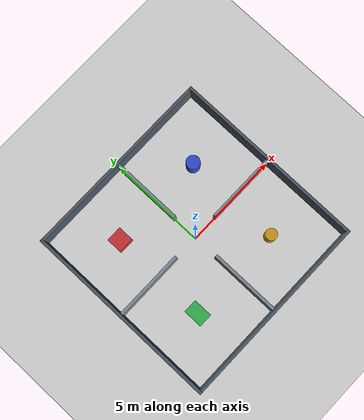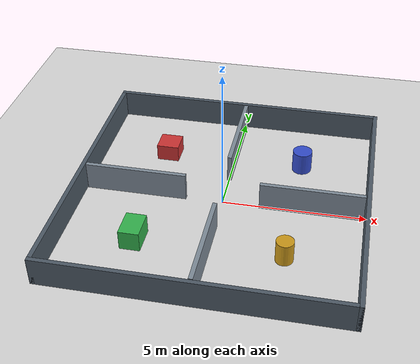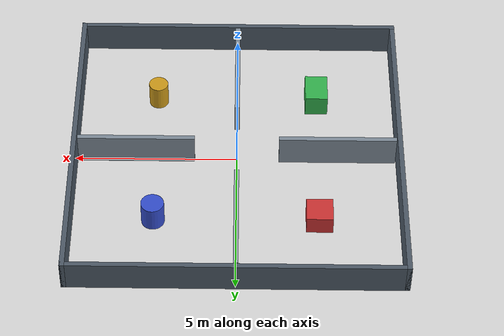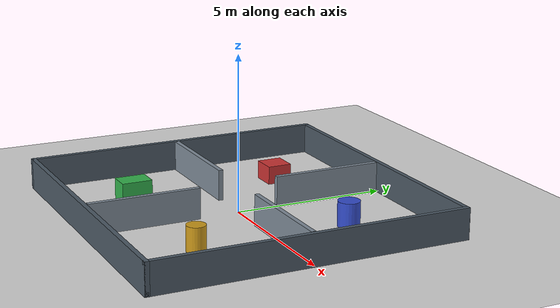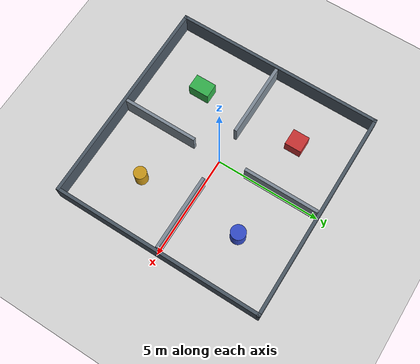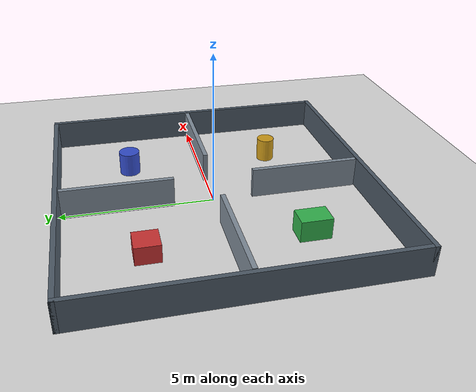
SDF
<?xml version="1.0" ?>
<sdf version="1.8">
    <world name="four_rooms_world">
        <!-- Physics Settings -->
        <physics name="1ms" type="ignored">
            <max_step_size>0.001</max_step_size>
            <real_time_factor>1.0</real_time_factor>
        </physics>

        <!-- Standard Plugins for Gazebo Sim (Harmonic) -->
        <plugin
            filename="gz-sim-physics-system"
            name="gz::sim::systems::Physics">
        </plugin>
        <plugin
            filename="gz-sim-user-commands-system"
            name="gz::sim::systems::UserCommands">
        </plugin>
        <plugin
            filename="gz-sim-scene-broadcaster-system"
            name="gz::sim::systems::SceneBroadcaster">
        </plugin>
        <plugin
            filename="gz-sim-sensors-system"
            name="gz::sim::systems::Sensors">
            <render_engine>ogre2</render_engine>
        </plugin>

        <!-- Sun Light -->
        <light type="directional" name="sun">
            <cast_shadows>true</cast_shadows>
            <pose>0 0 15 0 0 0</pose>
            <diffuse>0.85 0.85 0.85 1</diffuse>
            <specular>0.2 0.2 0.2 1</specular>
            <attenuation>
                <range>1000</range>
                <constant>0.9</constant>
                <linear>0.01</linear>
                <quadratic>0.001</quadratic>
            </attenuation>
            <direction>-0.5 0.2 -0.85</direction>
        </light>

        <!-- Ground Plane -->
        <model name="ground_plane">
            <static>true</static>
            <link name="link">
                <collision name="collision">
                    <geometry>
                        <plane>
                            <normal>0 0 1</normal>
                            <size>50 50</size>
                        </plane>
                    </geometry>
                </collision>
                <visual name="visual">
                    <geometry>
                        <plane>
                            <normal>0 0 1</normal>
                            <size>50 50</size>
                        </plane>
                    </geometry>
                    <material>
                        <ambient>0.85 0.85 0.85 1</ambient>
                        <diffuse>0.85 0.85 0.85 1</diffuse>
                        <specular>0.2 0.2 0.2 1</specular>
                    </material>
                </visual>
            </link>
        </model>

        <!-- FOUR ROOMS BUILDING (10m x 10m with doorways)  -->
        <model name="four_rooms">
            <static>true</static>
            <pose>0 0 0 0 0 0</pose>

            <!-- Outer Wall: North -->
            <link name="outer_wall_north">
                <pose>0 5.0 0.5 0 0 0</pose>
                <collision name="collision">
                    <geometry><box><size>10.15 0.15 1.0</size></box></geometry>
                </collision>
                <visual name="visual">
                    <geometry><box><size>10.15 0.15 1.0</size></box></geometry>
                    <material>
                        <ambient>0.3 0.35 0.4 1</ambient>
                        <diffuse>0.3 0.35 0.4 1</diffuse>
                    </material>
                </visual>
            </link>

            <!-- Outer Wall: South -->
            <link name="outer_wall_south">
                <pose>0 -5.0 0.5 0 0 0</pose>
                <collision name="collision">
                    <geometry><box><size>10.15 0.15 1.0</size></box></geometry>
                </collision>
                <visual name="visual">
                    <geometry><box><size>10.15 0.15 1.0</size></box></geometry>
                    <material>
                        <ambient>0.3 0.35 0.4 1</ambient>
                        <diffuse>0.3 0.35 0.4 1</diffuse>
                    </material>
                </visual>
            </link>

            <!-- Outer Wall: East -->
            <link name="outer_wall_east">
                <pose>5.0 0 0.5 0 0 0</pose>
                <collision name="collision">
                    <geometry><box><size>0.15 10.15 1.0</size></box></geometry>
                </collision>
                <visual name="visual">
                    <geometry><box><size>0.15 10.15 1.0</size></box></geometry>
                    <material>
                        <ambient>0.3 0.35 0.4 1</ambient>
                        <diffuse>0.3 0.35 0.4 1</diffuse>
                    </material>
                </visual>
            </link>

            <!-- Outer Wall: West -->
            <link name="outer_wall_west">
                <pose>-5.0 0 0.5 0 0 0</pose>
                <collision name="collision">
                    <geometry><box><size>0.15 10.15 1.0</size></box></geometry>
                </collision>
                <visual name="visual">
                    <geometry><box><size>0.15 10.15 1.0</size></box></geometry>
                    <material>
                        <ambient>0.3 0.35 0.4 1</ambient>
                        <diffuse>0.3 0.35 0.4 1</diffuse>
                    </material>
                </visual>
            </link>

            <!-- INTERIOR WALLS        -->
            <!-- (Center 0,0 is open)  -->

            <!-- North Divider Wall (between Room 1 and Room 2) -->
            <link name="inner_wall_north">
                <pose>0 3.1 0.5 0 0 0</pose>
                <collision name="collision"><geometry><box><size>0.15 3.6 1.0</size></box></geometry></collision>
                <visual name="visual"><geometry><box><size>0.15 3.6 1.0</size></box></geometry>
                    <material><ambient>0.5 0.55 0.6 1</ambient><diffuse>0.5 0.55 0.6 1</diffuse></material>
                </visual>
            </link>

            <!-- South Divider Wall (between Room 3 and Room 4) -->
            <link name="inner_wall_south">
                <pose>0 -3.1 0.5 0 0 0</pose>
                <collision name="collision"><geometry><box><size>0.15 3.6 1.0</size></box></geometry></collision>
                <visual name="visual"><geometry><box><size>0.15 3.6 1.0</size></box></geometry>
                    <material><ambient>0.5 0.55 0.6 1</ambient><diffuse>0.5 0.55 0.6 1</diffuse></material>
                </visual>
            </link>

            <!-- West Divider Wall (between Room 1 and Room 3) -->
            <link name="inner_wall_west">
                <pose>-3.1 0 0.5 0 0 0</pose>
                <collision name="collision"><geometry><box><size>3.6 0.15 1.0</size></box></geometry></collision>
                <visual name="visual"><geometry><box><size>3.6 0.15 1.0</size></box></geometry>
                    <material><ambient>0.5 0.55 0.6 1</ambient><diffuse>0.5 0.55 0.6 1</diffuse></material>
                </visual>
            </link>

            <!-- East Divider Wall (between Room 2 and Room 4) -->
            <link name="inner_wall_east">
                <pose>3.1 0 0.5 0 0 0</pose>
                <collision name="collision"><geometry><box><size>3.6 0.15 1.0</size></box></geometry></collision>
                <visual name="visual"><geometry><box><size>3.6 0.15 1.0</size></box></geometry>
                    <material><ambient>0.5 0.55 0.6 1</ambient><diffuse>0.5 0.55 0.6 1</diffuse></material>
                </visual>
            </link>
        </model>

        <!-- OBSTACLES INSIDE ROOMS (Great for LiDAR & SLAM)-->

        <!-- Room 1 (North-West): Central Table / Box -->
        <model name="room1_table">
            <static>true</static>
            <pose>-2.5 2.5 0.3 0 0 0</pose>
            <link name="link">
                <collision name="collision"><geometry><box><size>0.8 0.8 0.6</size></box></geometry></collision>
                <visual name="visual"><geometry><box><size>0.8 0.8 0.6</size></box></geometry>
                    <material><ambient>0.8 0.2 0.2 1</ambient><diffuse>0.8 0.2 0.2 1</diffuse></material>
                </visual>
            </link>
        </model>

        <!-- Room 2 (North-East): Cylinder Pillar -->
        <model name="room2_pillar">
            <static>true</static>
            <pose>2.5 2.5 0.4 0 0 0</pose>
            <link name="link">
                <collision name="collision"><geometry><cylinder><radius>0.35</radius><length>0.8</length></cylinder></geometry></collision>
                <visual name="visual"><geometry><cylinder><radius>0.35</radius><length>0.8</length></cylinder></geometry>
                    <material><ambient>0.2 0.3 0.8 1</ambient><diffuse>0.2 0.3 0.8 1</diffuse></material>
                </visual>
            </link>
        </model>

        <!-- Room 3 (South-West): Storage Box -->
        <model name="room3_box">
            <static>true</static>
            <pose>-2.5 -2.5 0.35 0 0 0</pose>
            <link name="link">
                <collision name="collision"><geometry><box><size>0.7 1.0 0.7</size></box></geometry></collision>
                <visual name="visual"><geometry><box><size>0.7 1.0 0.7</size></box></geometry>
                    <material><ambient>0.2 0.7 0.3 1</ambient><diffuse>0.2 0.7 0.3 1</diffuse></material>
                </visual>
            </link>
        </model>

        <!-- Room 4 (South-East): Small Pillar -->
        <model name="room4_pillar">
            <static>true</static>
            <pose>2.5 -2.5 0.4 0 0 0</pose>
            <link name="link">
                <collision name="collision"><geometry><cylinder><radius>0.3</radius><length>0.8</length></cylinder></geometry></collision>
                <visual name="visual"><geometry><cylinder><radius>0.3</radius><length>0.8</length></cylinder></geometry>
                    <material><ambient>0.8 0.6 0.1 1</ambient><diffuse>0.8 0.6 0.1 1</diffuse></material>
                </visual>
            </link>
        </model>

    </world>
</sdf>
